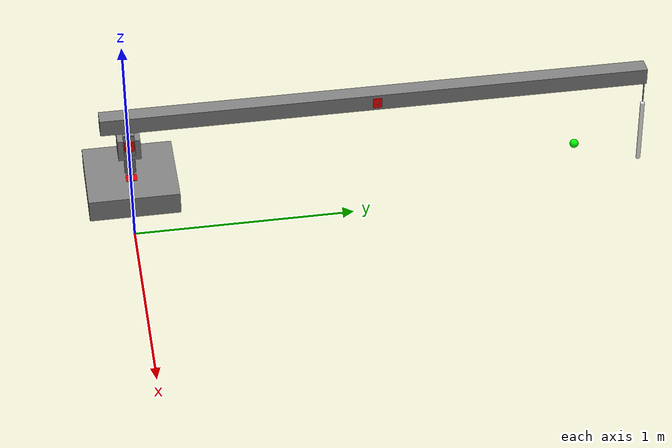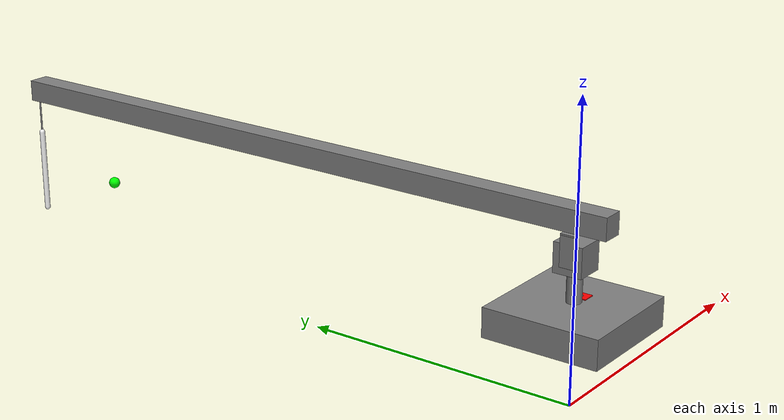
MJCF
<mujoco>
  <!-- Simulator options -->
  <option timestep="0.01" iterations="1" ls_iterations="5" integrator="implicitfast"/>

  <!-- Defaults -->
  <default>
    <!-- No contact, everything is grey-->
    <geom rgba="0.5 0.5 0.5 1" conaffinity="0"/>

    <!-- Note that joint damping has a big impact on sim stability, esp. with
         the tendon -->
    <joint damping="1e-4"/>
  </default>

  <!-- The robot -->
  <worldbody>
    <camera name="top_view" pos="2.760 0.948 1.414" xyaxes="0.007 1.000 -0.000 -0.256 0.002 0.967"/>

    <body name="base" pos="0 0 0.3">
      <geom type="box" size="0.2 0.2 0.05" />
      <body name="imu1" pos="0.05 0.0 0.05">
        <geom type="box" size=".022 .024 0.003" rgba="1 0 0 1" />
        <site name="imu1_site" />
      </body>

      <!-- The slew/yaw joint rotates the crane. -->
      <body name="trunk" pos="0 0 0.1" quat="0.707 0 0 0.707">
        <joint name="slew" type="hinge" axis="0 0 1" pos="0 0 -.075" />
        <geom type="cylinder" size=".025 .05" />

        <!-- The luff/pitch joint moves the boom up and down. -->
        <body pos="0 0 .1">
          <geom type="box" size=".05 .05 .05" />
          <body name="boom" pos="1.1 0 .12">
            <joint name="luff" type="hinge" axis="0 -1 0" pos="-1.1 0 -.12" range="0 60" />

            <!-- Connecter pieces between the boom and the base-->
            <body pos="-1.1 0 -0.04">
              <geom type="box" size=".025 .055 .0025" />
              <body pos="0 -.0525 -.05375">
                <geom type="box" size=".025 .0025 .05125" />
                <body name="imu2" pos="0.0 -0.0055 0.0">
                  <geom type="box" size=".022 .003 0.024" rgba="1 0 0 1" />
                  <site name="imu2_site" />
                </body>
              </body>
              <body pos="0 .0525 -.05375">
                <geom type="box" size=".025 .0025 .05125" />
              </body>
            </body>

            <!-- The boom itself -->
            <!-- Note that we use a lower density (1000 is default) to reduce
                 the mass ratios in the sim, which makes the sim more stable.
            -->
            <geom type="box" density="100" size="1.22 .0375 .0375" />
            <body name="imu3" pos="0 -0.0405 0">
              <geom type="box" size=".020 .003 0.023" rgba="1 0 0 1" />
              <site name="imu3_site" />
            </body>

            <!-- The site for attaching the cable -->
            <site name="boom_end" pos="1.22 0 -0.0375" />

          </body>
        </body>
      </body>
    </body>

    <!-- The payload -->
    <body name="payload" pos="0.0 2.32 0.3">
      <joint type="free" />
      <geom type="capsule" size=".01 0.15" rgba="0.99 0.99 0.99 1.0" />

      <!-- Site to attach the top of the payload -->
      <site name="payload_top" pos="0 0 0.15" />

      <!-- We assume we can measure the position of the end of the payload -->
      <site name="payload_end" pos="0 0 -0.15" />
    </body>

    <!-- Target payload position-->
    <body name="target" pos="0.05 2.0 0.3" mocap="true">
      <site name="target" />
      <geom type="sphere" size="0.02" rgba="0 1 0 1" />
    </body>
  </worldbody>

  <!-- The cable holding the payload -->
  <tendon>
    <spatial name="cable" damping="0.0">
      <site site="boom_end"/>
      <site site="payload_top"/>
    </spatial>
  </tendon>

  <!-- Sensors -->
  <sensor>
    <!-- IMUs -->
    <gyro name="imu1_gyro" site="imu1_site" />
    <accelerometer name="imu1_accel" site="imu1_site" />
    <gyro name="imu2_gyro" site="imu2_site" />
    <accelerometer name="imu2_accel" site="imu2_site" />
    <gyro name="imu3_gyro" site="imu3_site" />
    <accelerometer name="imu3_accel" site="imu3_site" />

    <!-- Payload position and velocity relative to the target -->
    <framepos name="payload_pos" objtype="site" objname="payload_end" reftype="site" refname="target"/>
    <framelinvel name="payload_vel" objtype="site" objname="payload_end" reftype="site" refname="target"/>
  </sensor>

  <actuator>
    <position name="slew" joint="slew" ctrlrange="-1 1" kp="10" dampratio="1.0" />
    <position name="luff" joint="luff" ctrlrange="0 1" kp="100" dampratio="1.0" />
    <position name="hoist" tendon="cable" kp="10" dampratio="1.0" forcerange="-10 0" ctrlrange="0.05 2.0"/>
  </actuator>
</mujoco>
